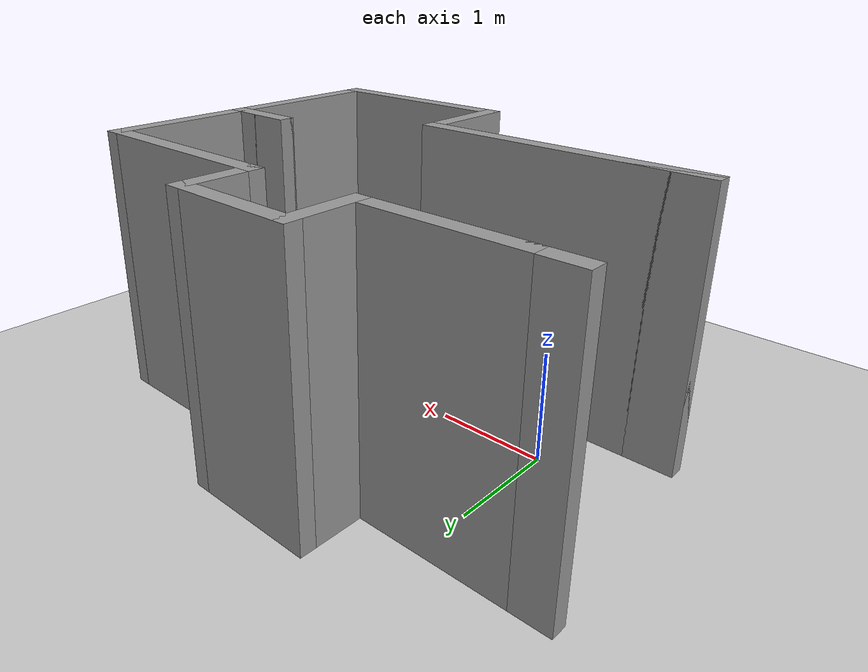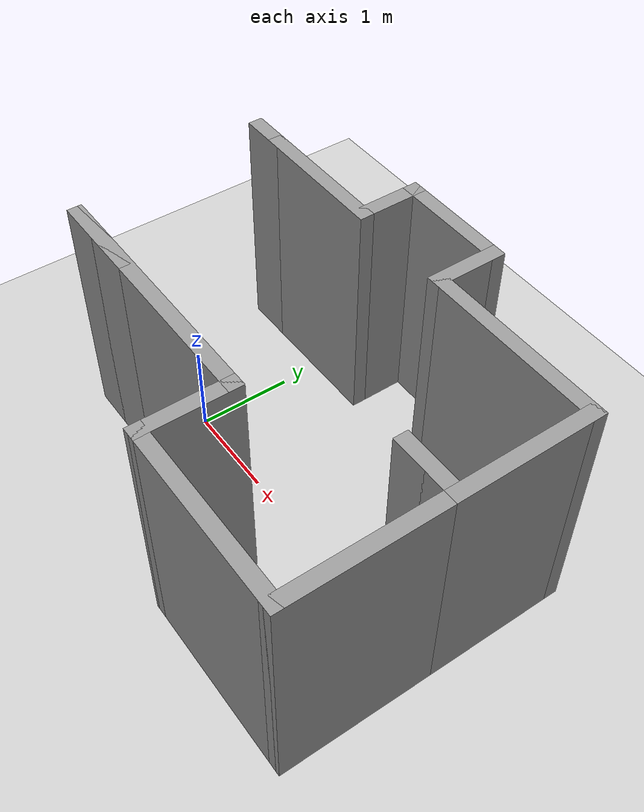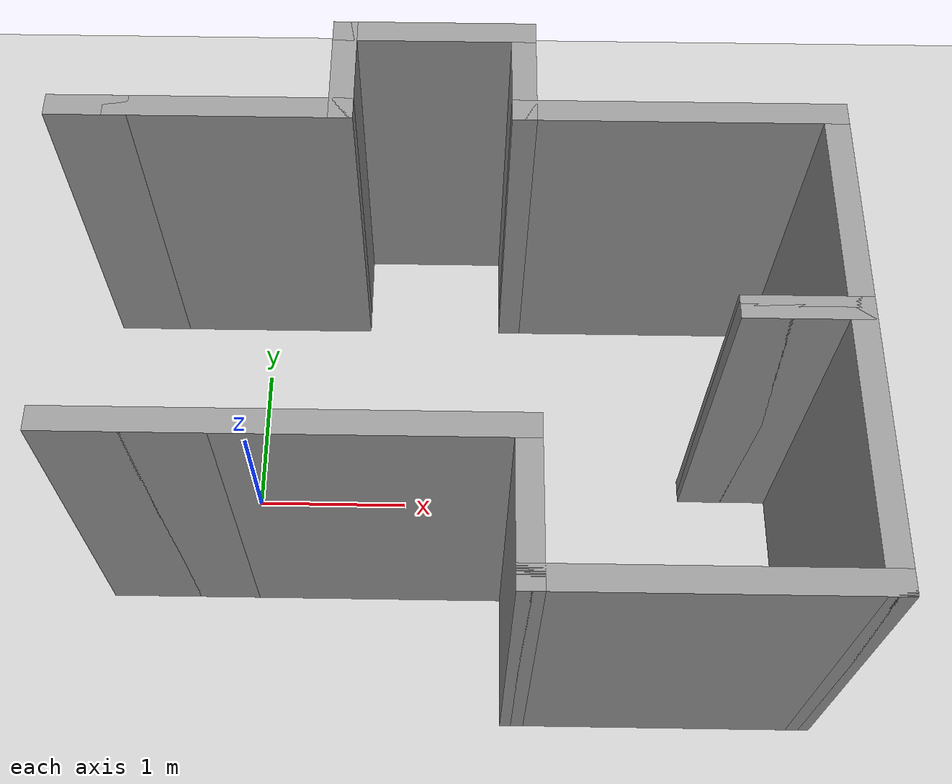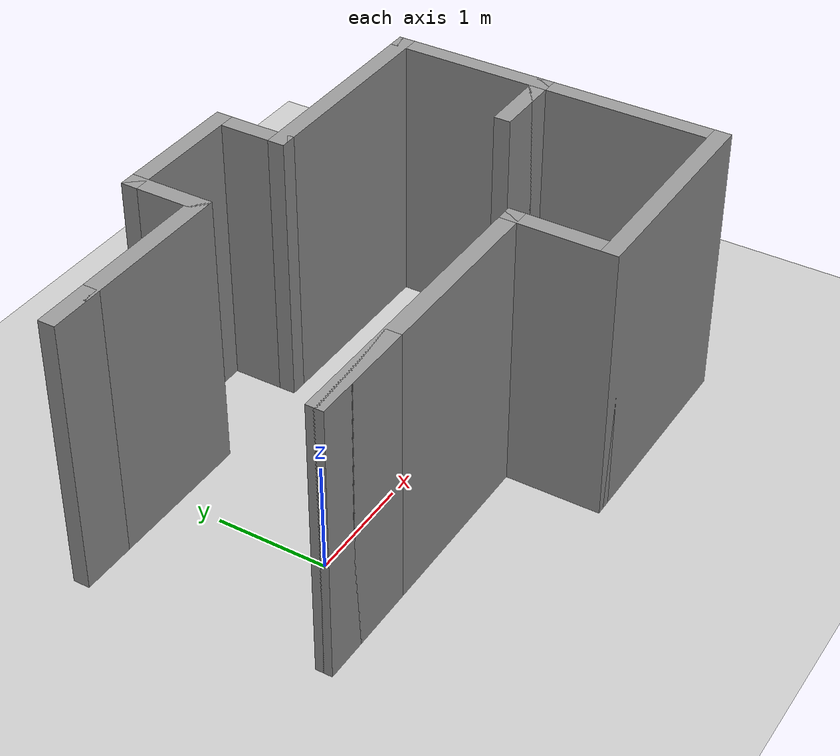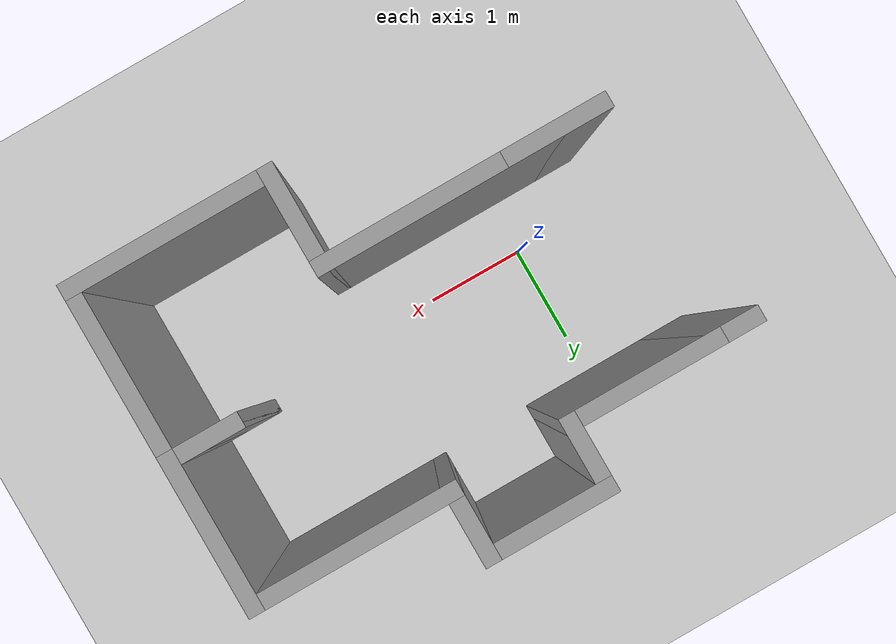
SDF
<sdf version="1.7">
 <world name="default">
  <model name="ground_plane">
   <static>1</static>
   <link name="link">
    <collision name="collision">
     <geometry><plane><normal>0 0 1</normal><size>100 100</size></plane></geometry>
     <surface><friction><ode><mu>100</mu><mu2>50</mu2></ode></friction></surface>
    </collision>
    <visual name="visual">
     <cast_shadows>0</cast_shadows>
     <geometry><plane><normal>0 0 1</normal><size>100 100</size></plane></geometry>
     <material>
      <script><uri>file://media/materials/scripts/gazebo.material</uri><name>Gazebo/Grey</name></script>
     </material>
    </visual>
   </link>
  </model>
  <light name="sun" type="directional">
   <pose>0 0 10 0 -0 0</pose>
   <diffuse>0.8 0.8 0.8 1</diffuse>
   <specular>0.2 0.2 0.2 1</specular>
   <attenuation>
    <range>1000</range>
    <constant>0.9</constant>
    <linear>0.01</linear>
    <quadratic>0.001</quadratic>
   </attenuation>
   <direction>-0.5 0.1 -0.9</direction>
   <spot><inner_angle>0</inner_angle><outer_angle>0</outer_angle><falloff>0</falloff></spot>
  </light>
  <scene><shadows>0</shadows><ambient>0.4 0.4 0.4 1</ambient><background>0.7 0.7 0.7 1</background></scene>
  <physics type="ode">
   <real_time_update_rate>1000</real_time_update_rate>
   <max_step_size>0.001</max_step_size>
   <real_time_factor>1</real_time_factor>
   <ode>
    <solver>
     <type>quick</type>
     <iters>150</iters>
     <precon_iters>0</precon_iters>
     <sor>1.4</sor>
     <use_dynamic_moi_rescaling>1</use_dynamic_moi_rescaling>
    </solver>
    <constraints>
     <cfm>1e-05</cfm>
     <erp>0.2</erp>
     <contact_max_correcting_vel>2000</contact_max_correcting_vel>
     <contact_surface_layer>0.01</contact_surface_layer>
    </constraints>
   </ode>
  </physics>
  <gravity>0 0 -9.8</gravity>
  <magnetic_field>6e-06 2.3e-05 -4.2e-05</magnetic_field>
  <atmosphere type="adiabatic"/>
  <audio><device>default</device></audio>
  <spherical_coordinates>
   <surface_model>EARTH_WGS84</surface_model>
   <latitude_deg>0</latitude_deg>
   <longitude_deg>0</longitude_deg>
   <elevation>0</elevation>
   <heading_deg>0</heading_deg>
  </spherical_coordinates>
  <model name="Untitled">
   <link name="Wall_1">
    <pose>-1.71 -0.925 0 0 -0 3.14159</pose>
    <visual name="Wall_1_Visual">
     <pose>0 0 1.25 0 -0 0</pose>
     <geometry><box><size>0.98 0.15 2.5</size></box></geometry>
     <material>
      <script><uri>file://media/materials/scripts/gazebo.material</uri><name>Gazebo/Grey</name></script>
      <ambient>1 1 1 1</ambient>
      <shader type="pixel"/>
     </material>
     <meta><layer>0</layer></meta>
    </visual>
    <collision name="Wall_1_Collision">
     <pose>0 0 1.25 0 -0 0</pose>
     <geometry><box><size>0.98 0.15 2.5</size></box></geometry>
     <surface>
      <friction>
       <ode><mu>1</mu><mu2>1</mu2><fdir1>0 0 0</fdir1><slip1>0</slip1><slip2>0</slip2></ode>
       <torsional>
        <coefficient>1</coefficient>
        <patch_radius>0</patch_radius>
        <surface_radius>0</surface_radius>
        <use_patch_radius>1</use_patch_radius>
        <ode><slip>0</slip></ode>
       </torsional>
      </friction>
      <bounce><restitution_coefficient>0</restitution_coefficient><threshold>1e+06</threshold></bounce>
      <contact>
       <collide_without_contact>0</collide_without_contact>
       <collide_without_contact_bitmask>1</collide_without_contact_bitmask>
       <collide_bitmask>1</collide_bitmask>
       <ode>
        <soft_cfm>0</soft_cfm>
        <soft_erp>0.2</soft_erp>
        <kp>1e+13</kp>
        <kd>1</kd>
        <max_vel>0.01</max_vel>
        <min_depth>0</min_depth>
       </ode>
       <bullet>
        <split_impulse>1</split_impulse>
        <split_impulse_penetration_threshold>-0.01</split_impulse_penetration_threshold>
        <soft_cfm>0</soft_cfm>
        <soft_erp>0.2</soft_erp>
        <kp>1e+13</kp>
        <kd>1</kd>
       </bullet>
      </contact>
     </surface>
    </collision>
   </link>
   <link name="Wall_11">
    <pose>2.325 0.5 0 0 -0 1.5708</pose>
    <visual name="Wall_11_Visual">
     <pose>0 0 1.25 0 -0 0</pose>
     <geometry><box><size>1.5 0.15 2.5</size></box></geometry>
     <material>
      <script><uri>file://media/materials/scripts/gazebo.material</uri><name>Gazebo/Grey</name></script>
      <ambient>1 1 1 1</ambient>
      <shader type="pixel"/>
     </material>
     <meta><layer>0</layer></meta>
    </visual>
    <collision name="Wall_11_Collision">
     <pose>0 0 1.25 0 -0 0</pose>
     <geometry><box><size>1.5 0.15 2.5</size></box></geometry>
     <surface>
      <friction>
       <ode><mu>1</mu><mu2>1</mu2><fdir1>0 0 0</fdir1><slip1>0</slip1><slip2>0</slip2></ode>
       <torsional>
        <coefficient>1</coefficient>
        <patch_radius>0</patch_radius>
        <surface_radius>0</surface_radius>
        <use_patch_radius>1</use_patch_radius>
        <ode><slip>0</slip></ode>
       </torsional>
      </friction>
      <bounce><restitution_coefficient>0</restitution_coefficient><threshold>1e+06</threshold></bounce>
      <contact>
       <collide_without_contact>0</collide_without_contact>
       <collide_without_contact_bitmask>1</collide_without_contact_bitmask>
       <collide_bitmask>1</collide_bitmask>
       <ode>
        <soft_cfm>0</soft_cfm>
        <soft_erp>0.2</soft_erp>
        <kp>1e+13</kp>
        <kd>1</kd>
        <max_vel>0.01</max_vel>
        <min_depth>0</min_depth>
       </ode>
       <bullet>
        <split_impulse>1</split_impulse>
        <split_impulse_penetration_threshold>-0.01</split_impulse_penetration_threshold>
        <soft_cfm>0</soft_cfm>
        <soft_erp>0.2</soft_erp>
        <kp>1e+13</kp>
        <kd>1</kd>
       </bullet>
      </contact>
     </surface>
    </collision>
   </link>
   <link name="Wall_12">
    <pose>1.4 1.175 0 0 -0 3.14159</pose>
    <visual name="Wall_12_Visual">
     <pose>0 0 1.25 0 -0 0</pose>
     <geometry><box><size>2 0.15 2.5</size></box></geometry>
     <material>
      <script><uri>file://media/materials/scripts/gazebo.material</uri><name>Gazebo/Grey</name></script>
      <ambient>1 1 1 1</ambient>
      <shader type="pixel"/>
     </material>
     <meta><layer>0</layer></meta>
    </visual>
    <collision name="Wall_12_Collision">
     <pose>0 0 1.25 0 -0 0</pose>
     <geometry><box><size>2 0.15 2.5</size></box></geometry>
     <surface>
      <friction>
       <ode><mu>1</mu><mu2>1</mu2><fdir1>0 0 0</fdir1><slip1>0</slip1><slip2>0</slip2></ode>
       <torsional>
        <coefficient>1</coefficient>
        <patch_radius>0</patch_radius>
        <surface_radius>0</surface_radius>
        <use_patch_radius>1</use_patch_radius>
        <ode><slip>0</slip></ode>
       </torsional>
      </friction>
      <bounce><restitution_coefficient>0</restitution_coefficient><threshold>1e+06</threshold></bounce>
      <contact>
       <collide_without_contact>0</collide_without_contact>
       <collide_without_contact_bitmask>1</collide_without_contact_bitmask>
       <collide_bitmask>1</collide_bitmask>
       <ode>
        <soft_cfm>0</soft_cfm>
        <soft_erp>0.2</soft_erp>
        <kp>1e+13</kp>
        <kd>1</kd>
        <max_vel>0.01</max_vel>
        <min_depth>0</min_depth>
       </ode>
       <bullet>
        <split_impulse>1</split_impulse>
        <split_impulse_penetration_threshold>-0.01</split_impulse_penetration_threshold>
        <soft_cfm>0</soft_cfm>
        <soft_erp>0.2</soft_erp>
        <kp>1e+13</kp>
        <kd>1</kd>
       </bullet>
      </contact>
     </surface>
    </collision>
   </link>
   <link name="Wall_13">
    <pose>0.475 1.475 0 0 -0 1.5708</pose>
    <visual name="Wall_13_Visual">
     <pose>0 0 1.25 0 -0 0</pose>
     <geometry><box><size>0.75 0.15 2.5</size></box></geometry>
     <material>
      <script><uri>file://media/materials/scripts/gazebo.material</uri><name>Gazebo/Grey</name></script>
      <ambient>1 1 1 1</ambient>
      <shader type="pixel"/>
     </material>
     <meta><layer>0</layer></meta>
    </visual>
    <collision name="Wall_13_Collision">
     <pose>0 0 1.25 0 -0 0</pose>
     <geometry><box><size>0.75 0.15 2.5</size></box></geometry>
     <surface>
      <friction>
       <ode><mu>1</mu><mu2>1</mu2><fdir1>0 0 0</fdir1><slip1>0</slip1><slip2>0</slip2></ode>
       <torsional>
        <coefficient>1</coefficient>
        <patch_radius>0</patch_radius>
        <surface_radius>0</surface_radius>
        <use_patch_radius>1</use_patch_radius>
        <ode><slip>0</slip></ode>
       </torsional>
      </friction>
      <bounce><restitution_coefficient>0</restitution_coefficient><threshold>1e+06</threshold></bounce>
      <contact>
       <collide_without_contact>0</collide_without_contact>
       <collide_without_contact_bitmask>1</collide_without_contact_bitmask>
       <collide_bitmask>1</collide_bitmask>
       <ode>
        <soft_cfm>0</soft_cfm>
        <soft_erp>0.2</soft_erp>
        <kp>1e+13</kp>
        <kd>1</kd>
        <max_vel>0.01</max_vel>
        <min_depth>0</min_depth>
       </ode>
       <bullet>
        <split_impulse>1</split_impulse>
        <split_impulse_penetration_threshold>-0.01</split_impulse_penetration_threshold>
        <soft_cfm>0</soft_cfm>
        <soft_erp>0.2</soft_erp>
        <kp>1e+13</kp>
        <kd>1</kd>
       </bullet>
      </contact>
     </surface>
    </collision>
   </link>
   <link name="Wall_14">
    <pose>-0.075 1.775 0 0 -0 3.14159</pose>
    <visual name="Wall_14_Visual">
     <pose>0 0 1.25 0 -0 0</pose>
     <geometry><box><size>1.25 0.15 2.5</size></box></geometry>
     <material>
      <script><uri>file://media/materials/scripts/gazebo.material</uri><name>Gazebo/Grey</name></script>
      <ambient>1 1 1 1</ambient>
      <shader type="pixel"/>
     </material>
     <meta><layer>0</layer></meta>
    </visual>
    <collision name="Wall_14_Collision">
     <pose>0 0 1.25 0 -0 0</pose>
     <geometry><box><size>1.25 0.15 2.5</size></box></geometry>
     <surface>
      <friction>
       <ode><mu>1</mu><mu2>1</mu2><fdir1>0 0 0</fdir1><slip1>0</slip1><slip2>0</slip2></ode>
       <torsional>
        <coefficient>1</coefficient>
        <patch_radius>0</patch_radius>
        <surface_radius>0</surface_radius>
        <use_patch_radius>1</use_patch_radius>
        <ode><slip>0</slip></ode>
       </torsional>
      </friction>
      <bounce><restitution_coefficient>0</restitution_coefficient><threshold>1e+06</threshold></bounce>
      <contact>
       <collide_without_contact>0</collide_without_contact>
       <collide_without_contact_bitmask>1</collide_without_contact_bitmask>
       <collide_bitmask>1</collide_bitmask>
       <ode>
        <soft_cfm>0</soft_cfm>
        <soft_erp>0.2</soft_erp>
        <kp>1e+13</kp>
        <kd>1</kd>
        <max_vel>0.01</max_vel>
        <min_depth>0</min_depth>
       </ode>
       <bullet>
        <split_impulse>1</split_impulse>
        <split_impulse_penetration_threshold>-0.01</split_impulse_penetration_threshold>
        <soft_cfm>0</soft_cfm>
        <soft_erp>0.2</soft_erp>
        <kp>1e+13</kp>
        <kd>1</kd>
       </bullet>
      </contact>
     </surface>
    </collision>
   </link>
   <link name="Wall_15">
    <pose>-0.625 1.475 0 0 0 -1.5708</pose>
    <visual name="Wall_15_Visual">
     <pose>0 0 1.25 0 -0 0</pose>
     <geometry><box><size>0.75 0.15 2.5</size></box></geometry>
     <material>
      <script><uri>file://media/materials/scripts/gazebo.material</uri><name>Gazebo/Grey</name></script>
      <ambient>1 1 1 1</ambient>
      <shader type="pixel"/>
     </material>
     <meta><layer>0</layer></meta>
    </visual>
    <collision name="Wall_15_Collision">
     <pose>0 0 1.25 0 -0 0</pose>
     <geometry><box><size>0.75 0.15 2.5</size></box></geometry>
     <surface>
      <friction>
       <ode><mu>1</mu><mu2>1</mu2><fdir1>0 0 0</fdir1><slip1>0</slip1><slip2>0</slip2></ode>
       <torsional>
        <coefficient>1</coefficient>
        <patch_radius>0</patch_radius>
        <surface_radius>0</surface_radius>
        <use_patch_radius>1</use_patch_radius>
        <ode><slip>0</slip></ode>
       </torsional>
      </friction>
      <bounce><restitution_coefficient>0</restitution_coefficient><threshold>1e+06</threshold></bounce>
      <contact>
       <collide_without_contact>0</collide_without_contact>
       <collide_without_contact_bitmask>1</collide_without_contact_bitmask>
       <collide_bitmask>1</collide_bitmask>
       <ode>
        <soft_cfm>0</soft_cfm>
        <soft_erp>0.2</soft_erp>
        <kp>1e+13</kp>
        <kd>1</kd>
        <max_vel>0.01</max_vel>
        <min_depth>0</min_depth>
       </ode>
       <bullet>
        <split_impulse>1</split_impulse>
        <split_impulse_penetration_threshold>-0.01</split_impulse_penetration_threshold>
        <soft_cfm>0</soft_cfm>
        <soft_erp>0.2</soft_erp>
        <kp>1e+13</kp>
        <kd>1</kd>
       </bullet>
      </contact>
     </surface>
    </collision>
   </link>
   <link name="Wall_16">
    <pose>-1.3 1.175 0 0 -0 3.14159</pose>
    <visual name="Wall_16_Visual">
     <pose>0 0 1.25 0 -0 0</pose>
     <geometry><box><size>1.5 0.15 2.5</size></box></geometry>
     <material>
      <script><uri>file://media/materials/scripts/gazebo.material</uri><name>Gazebo/Grey</name></script>
      <ambient>1 1 1 1</ambient>
      <shader type="pixel"/>
     </material>
     <meta><layer>0</layer></meta>
    </visual>
    <collision name="Wall_16_Collision">
     <pose>0 0 1.25 0 -0 0</pose>
     <geometry><box><size>1.5 0.15 2.5</size></box></geometry>
     <surface>
      <friction>
       <ode><mu>1</mu><mu2>1</mu2><fdir1>0 0 0</fdir1><slip1>0</slip1><slip2>0</slip2></ode>
       <torsional>
        <coefficient>1</coefficient>
        <patch_radius>0</patch_radius>
        <surface_radius>0</surface_radius>
        <use_patch_radius>1</use_patch_radius>
        <ode><slip>0</slip></ode>
       </torsional>
      </friction>
      <bounce><restitution_coefficient>0</restitution_coefficient><threshold>1e+06</threshold></bounce>
      <contact>
       <collide_without_contact>0</collide_without_contact>
       <collide_without_contact_bitmask>1</collide_without_contact_bitmask>
       <collide_bitmask>1</collide_bitmask>
       <ode>
        <soft_cfm>0</soft_cfm>
        <soft_erp>0.2</soft_erp>
        <kp>1e+13</kp>
        <kd>1</kd>
        <max_vel>0.01</max_vel>
        <min_depth>0</min_depth>
       </ode>
       <bullet>
        <split_impulse>1</split_impulse>
        <split_impulse_penetration_threshold>-0.01</split_impulse_penetration_threshold>
        <soft_cfm>0</soft_cfm>
        <soft_erp>0.2</soft_erp>
        <kp>1e+13</kp>
        <kd>1</kd>
       </bullet>
      </contact>
     </surface>
    </collision>
   </link>
   <link name="Wall_17">
    <pose>-2.15 1.175 0 0 -0 3.14159</pose>
    <visual name="Wall_17_Visual">
     <pose>0 0 1.25 0 -0 0</pose>
     <geometry><box><size>0.5 0.15 2.5</size></box></geometry>
     <material>
      <script><uri>file://media/materials/scripts/gazebo.material</uri><name>Gazebo/Grey</name></script>
      <ambient>1 1 1 1</ambient>
      <shader type="pixel"/>
     </material>
     <meta><layer>0</layer></meta>
    </visual>
    <collision name="Wall_17_Collision">
     <pose>0 0 1.25 0 -0 0</pose>
     <geometry><box><size>0.5 0.15 2.5</size></box></geometry>
     <surface>
      <friction>
       <ode><mu>1</mu><mu2>1</mu2><fdir1>0 0 0</fdir1><slip1>0</slip1><slip2>0</slip2></ode>
       <torsional>
        <coefficient>1</coefficient>
        <patch_radius>0</patch_radius>
        <surface_radius>0</surface_radius>
        <use_patch_radius>1</use_patch_radius>
        <ode><slip>0</slip></ode>
       </torsional>
      </friction>
      <bounce><restitution_coefficient>0</restitution_coefficient><threshold>1e+06</threshold></bounce>
      <contact>
       <collide_without_contact>0</collide_without_contact>
       <collide_without_contact_bitmask>1</collide_without_contact_bitmask>
       <collide_bitmask>1</collide_bitmask>
       <ode>
        <soft_cfm>0</soft_cfm>
        <soft_erp>0.2</soft_erp>
        <kp>1e+13</kp>
        <kd>1</kd>
        <max_vel>0.01</max_vel>
        <min_depth>0</min_depth>
       </ode>
       <bullet>
        <split_impulse>1</split_impulse>
        <split_impulse_penetration_threshold>-0.01</split_impulse_penetration_threshold>
        <soft_cfm>0</soft_cfm>
        <soft_erp>0.2</soft_erp>
        <kp>1e+13</kp>
        <kd>1</kd>
       </bullet>
      </contact>
     </surface>
    </collision>
   </link>
   <link name="Wall_4">
    <pose>-0.825 -0.925 0 0 -0 0</pose>
    <visual name="Wall_4_Visual">
     <pose>0 0 1.25 0 -0 0</pose>
     <geometry><box><size>2.75 0.15 2.5</size></box></geometry>
     <material>
      <script><uri>file://media/materials/scripts/gazebo.material</uri><name>Gazebo/Grey</name></script>
      <ambient>1 1 1 1</ambient>
      <shader type="pixel"/>
     </material>
     <meta><layer>0</layer></meta>
    </visual>
    <collision name="Wall_4_Collision">
     <pose>0 0 1.25 0 -0 0</pose>
     <geometry><box><size>2.75 0.15 2.5</size></box></geometry>
     <surface>
      <friction>
       <ode><mu>1</mu><mu2>1</mu2><fdir1>0 0 0</fdir1><slip1>0</slip1><slip2>0</slip2></ode>
       <torsional>
        <coefficient>1</coefficient>
        <patch_radius>0</patch_radius>
        <surface_radius>0</surface_radius>
        <use_patch_radius>1</use_patch_radius>
        <ode><slip>0</slip></ode>
       </torsional>
      </friction>
      <bounce><restitution_coefficient>0</restitution_coefficient><threshold>1e+06</threshold></bounce>
      <contact>
       <collide_without_contact>0</collide_without_contact>
       <collide_without_contact_bitmask>1</collide_without_contact_bitmask>
       <collide_bitmask>1</collide_bitmask>
       <ode>
        <soft_cfm>0</soft_cfm>
        <soft_erp>0.2</soft_erp>
        <kp>1e+13</kp>
        <kd>1</kd>
        <max_vel>0.01</max_vel>
        <min_depth>0</min_depth>
       </ode>
       <bullet>
        <split_impulse>1</split_impulse>
        <split_impulse_penetration_threshold>-0.01</split_impulse_penetration_threshold>
        <soft_cfm>0</soft_cfm>
        <soft_erp>0.2</soft_erp>
        <kp>1e+13</kp>
        <kd>1</kd>
       </bullet>
      </contact>
     </surface>
    </collision>
   </link>
   <link name="Wall_5">
    <pose>0.475 -1.35 0 0 0 -1.5708</pose>
    <visual name="Wall_5_Visual">
     <pose>0 0 1.25 0 -0 0</pose>
     <geometry><box><size>1 0.15 2.5</size></box></geometry>
     <material>
      <script><uri>file://media/materials/scripts/gazebo.material</uri><name>Gazebo/Grey</name></script>
      <ambient>1 1 1 1</ambient>
      <shader type="pixel"/>
     </material>
     <meta><layer>0</layer></meta>
    </visual>
    <collision name="Wall_5_Collision">
     <pose>0 0 1.25 0 -0 0</pose>
     <geometry><box><size>1 0.15 2.5</size></box></geometry>
     <surface>
      <friction>
       <ode><mu>1</mu><mu2>1</mu2><fdir1>0 0 0</fdir1><slip1>0</slip1><slip2>0</slip2></ode>
       <torsional>
        <coefficient>1</coefficient>
        <patch_radius>0</patch_radius>
        <surface_radius>0</surface_radius>
        <use_patch_radius>1</use_patch_radius>
        <ode><slip>0</slip></ode>
       </torsional>
      </friction>
      <bounce><restitution_coefficient>0</restitution_coefficient><threshold>1e+06</threshold></bounce>
      <contact>
       <collide_without_contact>0</collide_without_contact>
       <collide_without_contact_bitmask>1</collide_without_contact_bitmask>
       <collide_bitmask>1</collide_bitmask>
       <ode>
        <soft_cfm>0</soft_cfm>
        <soft_erp>0.2</soft_erp>
        <kp>1e+13</kp>
        <kd>1</kd>
        <max_vel>0.01</max_vel>
        <min_depth>0</min_depth>
       </ode>
       <bullet>
        <split_impulse>1</split_impulse>
        <split_impulse_penetration_threshold>-0.01</split_impulse_penetration_threshold>
        <soft_cfm>0</soft_cfm>
        <soft_erp>0.2</soft_erp>
        <kp>1e+13</kp>
        <kd>1</kd>
       </bullet>
      </contact>
     </surface>
    </collision>
   </link>
   <link name="Wall_6">
    <pose>1.4 -1.775 0 0 -0 0</pose>
    <visual name="Wall_6_Visual">
     <pose>0 0 1.25 0 -0 0</pose>
     <geometry><box><size>2 0.15 2.5</size></box></geometry>
     <material>
      <script><uri>file://media/materials/scripts/gazebo.material</uri><name>Gazebo/Grey</name></script>
      <ambient>1 1 1 1</ambient>
      <shader type="pixel"/>
     </material>
     <meta><layer>0</layer></meta>
    </visual>
    <collision name="Wall_6_Collision">
     <pose>0 0 1.25 0 -0 0</pose>
     <geometry><box><size>2 0.15 2.5</size></box></geometry>
     <surface>
      <friction>
       <ode><mu>1</mu><mu2>1</mu2><fdir1>0 0 0</fdir1><slip1>0</slip1><slip2>0</slip2></ode>
       <torsional>
        <coefficient>1</coefficient>
        <patch_radius>0</patch_radius>
        <surface_radius>0</surface_radius>
        <use_patch_radius>1</use_patch_radius>
        <ode><slip>0</slip></ode>
       </torsional>
      </friction>
      <bounce><restitution_coefficient>0</restitution_coefficient><threshold>1e+06</threshold></bounce>
      <contact>
       <collide_without_contact>0</collide_without_contact>
       <collide_without_contact_bitmask>1</collide_without_contact_bitmask>
       <collide_bitmask>1</collide_bitmask>
       <ode>
        <soft_cfm>0</soft_cfm>
        <soft_erp>0.2</soft_erp>
        <kp>1e+13</kp>
        <kd>1</kd>
        <max_vel>0.01</max_vel>
        <min_depth>0</min_depth>
       </ode>
       <bullet>
        <split_impulse>1</split_impulse>
        <split_impulse_penetration_threshold>-0.01</split_impulse_penetration_threshold>
        <soft_cfm>0</soft_cfm>
        <soft_erp>0.2</soft_erp>
        <kp>1e+13</kp>
        <kd>1</kd>
       </bullet>
      </contact>
     </surface>
    </collision>
   </link>
   <link name="Wall_7">
    <pose>2.325 -0.975 0 0 -0 1.5708</pose>
    <visual name="Wall_7_Visual">
     <pose>0 0 1.25 0 -0 0</pose>
     <geometry><box><size>1.75 0.15 2.5</size></box></geometry>
     <material>
      <script><uri>file://media/materials/scripts/gazebo.material</uri><name>Gazebo/Grey</name></script>
      <ambient>1 1 1 1</ambient>
      <shader type="pixel"/>
     </material>
     <meta><layer>0</layer></meta>
    </visual>
    <collision name="Wall_7_Collision">
     <pose>0 0 1.25 0 -0 0</pose>
     <geometry><box><size>1.75 0.15 2.5</size></box></geometry>
     <surface>
      <friction>
       <ode><mu>1</mu><mu2>1</mu2><fdir1>0 0 0</fdir1><slip1>0</slip1><slip2>0</slip2></ode>
       <torsional>
        <coefficient>1</coefficient>
        <patch_radius>0</patch_radius>
        <surface_radius>0</surface_radius>
        <use_patch_radius>1</use_patch_radius>
        <ode><slip>0</slip></ode>
       </torsional>
      </friction>
      <bounce><restitution_coefficient>0</restitution_coefficient><threshold>1e+06</threshold></bounce>
      <contact>
       <collide_without_contact>0</collide_without_contact>
       <collide_without_contact_bitmask>1</collide_without_contact_bitmask>
       <collide_bitmask>1</collide_bitmask>
       <ode>
        <soft_cfm>0</soft_cfm>
        <soft_erp>0.2</soft_erp>
        <kp>1e+13</kp>
        <kd>1</kd>
        <max_vel>0.01</max_vel>
        <min_depth>0</min_depth>
       </ode>
       <bullet>
        <split_impulse>1</split_impulse>
        <split_impulse_penetration_threshold>-0.01</split_impulse_penetration_threshold>
        <soft_cfm>0</soft_cfm>
        <soft_erp>0.2</soft_erp>
        <kp>1e+13</kp>
        <kd>1</kd>
       </bullet>
      </contact>
     </surface>
    </collision>
   </link>
   <link name="Wall_8">
    <pose>2.025 -0.175 0 0 -0 3.14159</pose>
    <visual name="Wall_8_Visual">
     <pose>0 0 1.25 0 -0 0</pose>
     <geometry><box><size>0.75 0.15 2.5</size></box></geometry>
     <material>
      <script><uri>file://media/materials/scripts/gazebo.material</uri><name>Gazebo/Grey</name></script>
      <ambient>1 1 1 1</ambient>
      <shader type="pixel"/>
     </material>
     <meta><layer>0</layer></meta>
    </visual>
    <collision name="Wall_8_Collision">
     <pose>0 0 1.25 0 -0 0</pose>
     <geometry><box><size>0.75 0.15 2.5</size></box></geometry>
     <surface>
      <friction>
       <ode><mu>1</mu><mu2>1</mu2><fdir1>0 0 0</fdir1><slip1>0</slip1><slip2>0</slip2></ode>
       <torsional>
        <coefficient>1</coefficient>
        <patch_radius>0</patch_radius>
        <surface_radius>0</surface_radius>
        <use_patch_radius>1</use_patch_radius>
        <ode><slip>0</slip></ode>
       </torsional>
      </friction>
      <bounce><restitution_coefficient>0</restitution_coefficient><threshold>1e+06</threshold></bounce>
      <contact>
       <collide_without_contact>0</collide_without_contact>
       <collide_without_contact_bitmask>1</collide_without_contact_bitmask>
       <collide_bitmask>1</collide_bitmask>
       <ode>
        <soft_cfm>0</soft_cfm>
        <soft_erp>0.2</soft_erp>
        <kp>1e+13</kp>
        <kd>1</kd>
        <max_vel>0.01</max_vel>
        <min_depth>0</min_depth>
       </ode>
       <bullet>
        <split_impulse>1</split_impulse>
        <split_impulse_penetration_threshold>-0.01</split_impulse_penetration_threshold>
        <soft_cfm>0</soft_cfm>
        <soft_erp>0.2</soft_erp>
        <kp>1e+13</kp>
        <kd>1</kd>
       </bullet>
      </contact>
     </surface>
    </collision>
   </link>
   <link name="Wall_9">
    <pose>2.025 -0.175 0 0 -0 0</pose>
    <visual name="Wall_9_Visual">
     <pose>0 0 1.25 0 -0 0</pose>
     <geometry><box><size>0.75 0.15 2.5</size></box></geometry>
     <material>
      <script><uri>file://media/materials/scripts/gazebo.material</uri><name>Gazebo/Grey</name></script>
      <ambient>1 1 1 1</ambient>
      <shader type="pixel"/>
     </material>
     <meta><layer>0</layer></meta>
    </visual>
    <collision name="Wall_9_Collision">
     <pose>0 0 1.25 0 -0 0</pose>
     <geometry><box><size>0.75 0.15 2.5</size></box></geometry>
     <surface>
      <friction>
       <ode><mu>1</mu><mu2>1</mu2><fdir1>0 0 0</fdir1><slip1>0</slip1><slip2>0</slip2></ode>
       <torsional>
        <coefficient>1</coefficient>
        <patch_radius>0</patch_radius>
        <surface_radius>0</surface_radius>
        <use_patch_radius>1</use_patch_radius>
        <ode><slip>0</slip></ode>
       </torsional>
      </friction>
      <bounce><restitution_coefficient>0</restitution_coefficient><threshold>1e+06</threshold></bounce>
      <contact>
       <collide_without_contact>0</collide_without_contact>
       <collide_without_contact_bitmask>1</collide_without_contact_bitmask>
       <collide_bitmask>1</collide_bitmask>
       <ode>
        <soft_cfm>0</soft_cfm>
        <soft_erp>0.2</soft_erp>
        <kp>1e+13</kp>
        <kd>1</kd>
        <max_vel>0.01</max_vel>
        <min_depth>0</min_depth>
       </ode>
       <bullet>
        <split_impulse>1</split_impulse>
        <split_impulse_penetration_threshold>-0.01</split_impulse_penetration_threshold>
        <soft_cfm>0</soft_cfm>
        <soft_erp>0.2</soft_erp>
        <kp>1e+13</kp>
        <kd>1</kd>
       </bullet>
      </contact>
     </surface>
    </collision>
   </link>
   <static>1</static>
   <pose>1.26025 0.310254 0 0 -0 0</pose>
  </model>
 </world>
</sdf>
